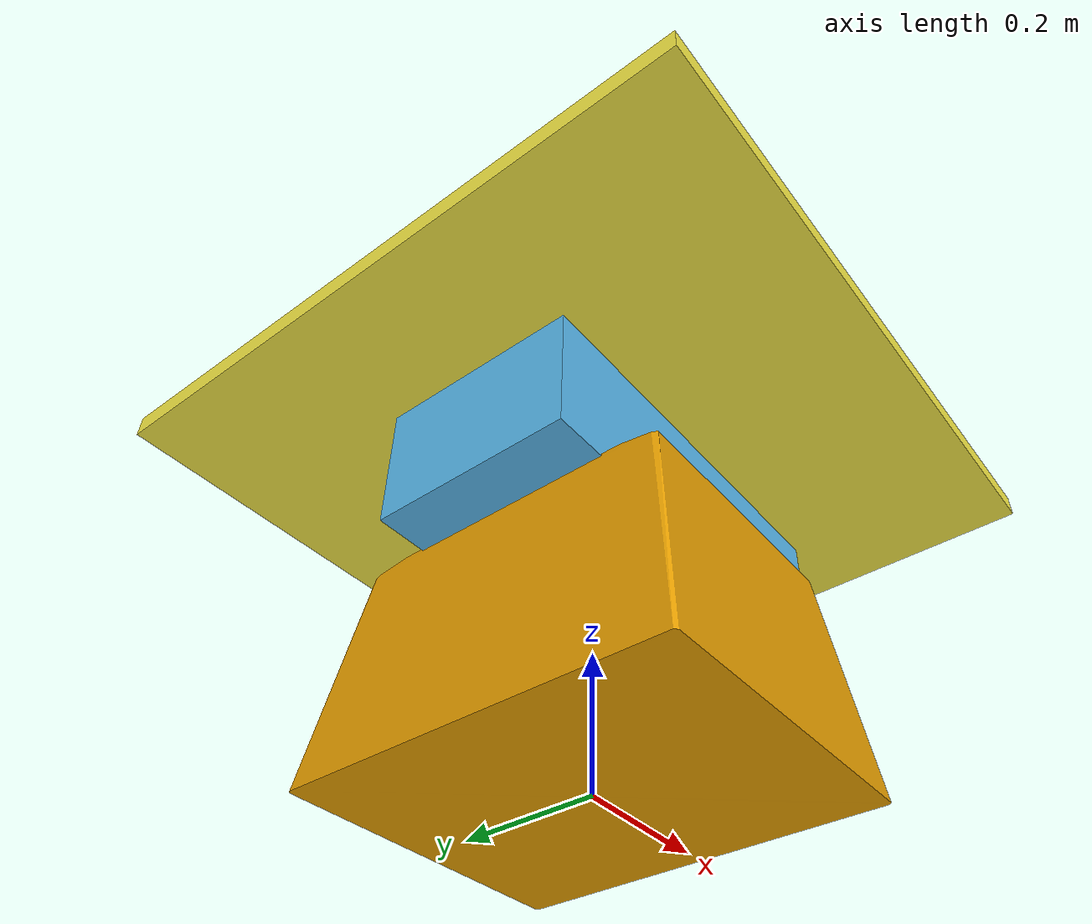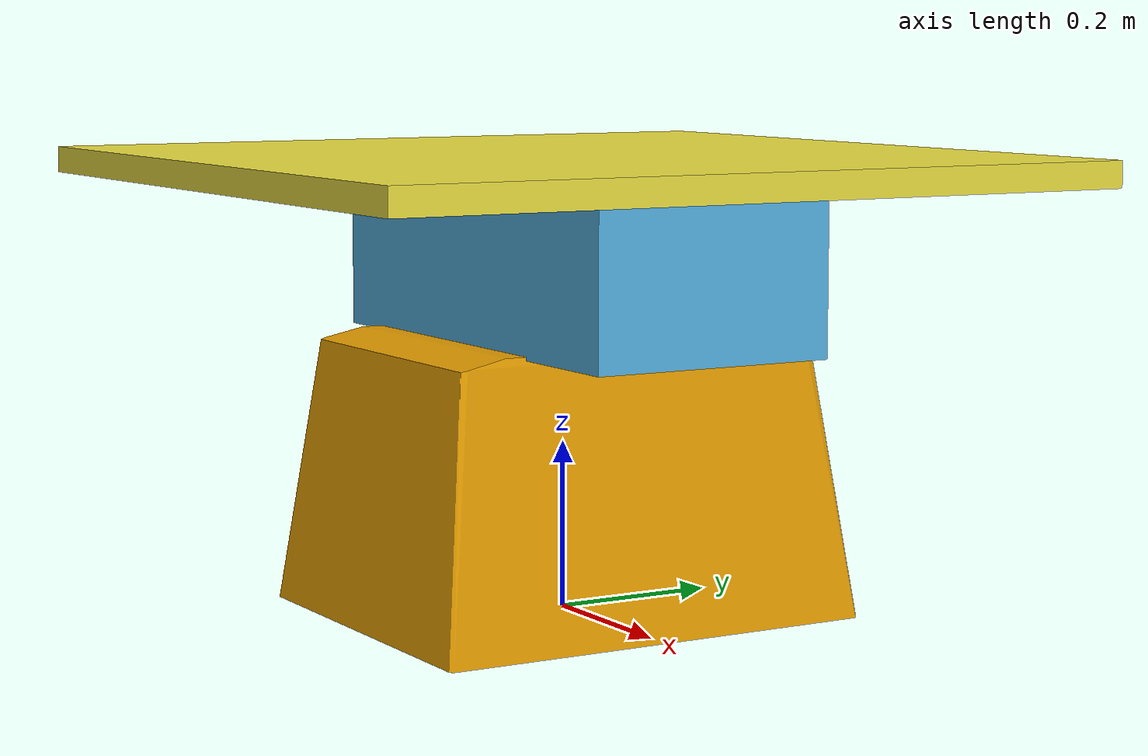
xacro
<?xml version="1.0" ?>
<robot name="hydra_positioner" xmlns:xacro="http://www.ros.org/wiki/xacro">
  <xacro:arg name="prefix" default=""/>
  <xacro:include filename="$(find hydra_description)/urdf/positioner/positioner_macro.xacro"/>
  <xacro:positioner_macro prefix="$(arg prefix)"/>

  <link name="world" />
  <joint name="world-$(arg prefix)hydra_positioner" type="fixed">
    <parent link="world"/>
    <child link="$(arg prefix)positioner_stand_base"/>
  </joint>
</robot>

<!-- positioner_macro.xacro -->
<robot xmlns:xacro="http://www.ros.org/wiki/xacro">

  <xacro:property name="pos_stand_height" value="0.32853" />

  <xacro:macro name="positioner_macro" params="prefix">

    <!-- link list -->
    <link name="${prefix}positioner_stand_base">
        <visual>
          <geometry>
            <mesh filename="package://hydra_description/meshes/visual/positioner_stand.dae"/>
          </geometry>
        </visual>
        <collision>
          <geometry>
            <mesh filename="package://hydra_description/meshes/collision/positioner_stand_collision.stl"/>
          </geometry>
        </collision>
    </link>
    <link name="${prefix}rotary_table_base">
        <visual>
        <geometry>
          <mesh filename="package://hydra_description/meshes/visual/rotary_table.dae"/>
        </geometry>
      </visual>
      <collision>
        <geometry>
          <mesh filename="package://hydra_description/meshes/collision/rotary_table_collision.stl"/>
        </geometry>
      </collision>
    </link>
    <link name="${prefix}rotary_table_top"/>

    <link name="${prefix}positioner_base">
        <visual>
        <geometry>
          <mesh filename="package://hydra_description/meshes/visual/hydra_positioner.dae"/>
        </geometry>
      </visual>
      <collision>
        <geometry>
          <mesh filename="package://hydra_description/meshes/collision/hydra_positioner_collision.stl"/>
        </geometry>
      </collision>
    </link>
    <link name="${prefix}positioner"/>
    <link name="${prefix}positioner_static"/>

    <!-- joint list -->
    <joint name="${prefix}pos_stand_base-rotary_table_base" type="fixed">
      <origin rpy="0.0 0.0 0.0" xyz="0 0 ${pos_stand_height}"/>
      <parent link="${prefix}positioner_stand_base"/>
      <child link="${prefix}rotary_table_base"/>
    </joint>
    <joint name="${prefix}rotary_table_top_base" type="fixed">
      <origin rpy="0.0 0.0 0.0" xyz="0 0 0.183984"/>
      <parent link="${prefix}rotary_table_base"/>
      <child link="${prefix}rotary_table_top"/>
    </joint>
    <joint name="${prefix}rotary_table_positioner" type="continuous">
      <origin rpy="0.0 0.0 0.0" xyz="0 0 0"/>
      <axis xyz="0 0 1"/>
      <parent link="${prefix}rotary_table_top"/>
      <child link="${prefix}positioner_base"/>
    </joint>
    <joint name="${prefix}positioner_joint" type="fixed">
      <origin rpy="0.0 0.0 0.0" xyz="0 0 0.03175"/>
      <parent link="${prefix}positioner_base"/>
      <child link="${prefix}positioner"/>
    </joint>
    <joint name="${prefix}positioner_static_joint" type="fixed">
      <origin rpy="0.0 0.0 0.0" xyz="0 0 0.03175"/>
      <parent link="${prefix}rotary_table_top"/>
      <child link="${prefix}positioner_static"/>
    </joint>

  </xacro:macro>
</robot>
